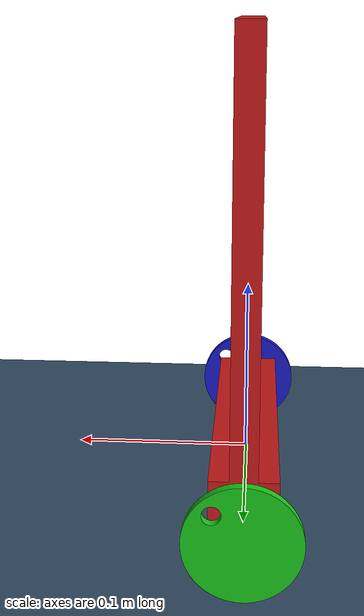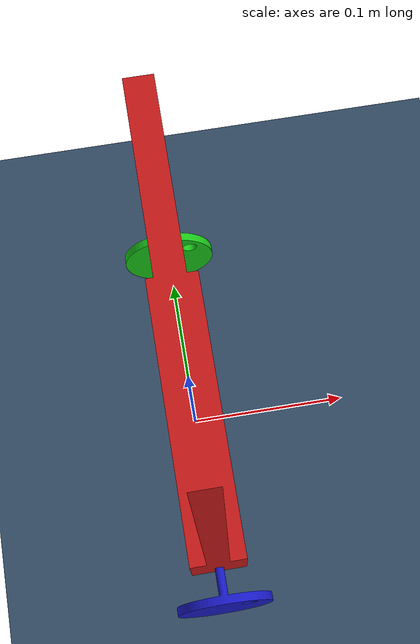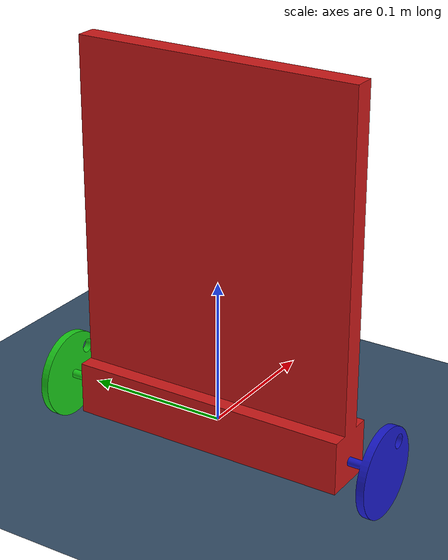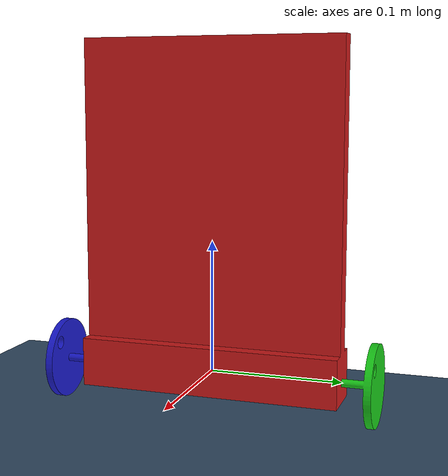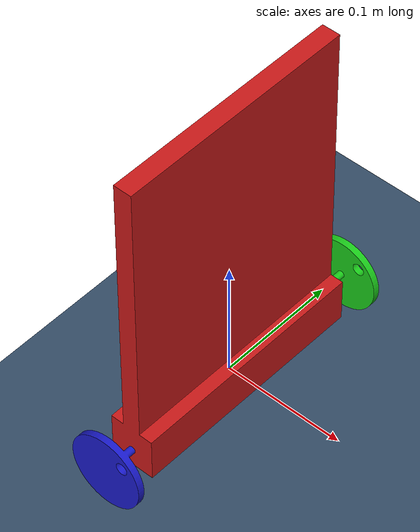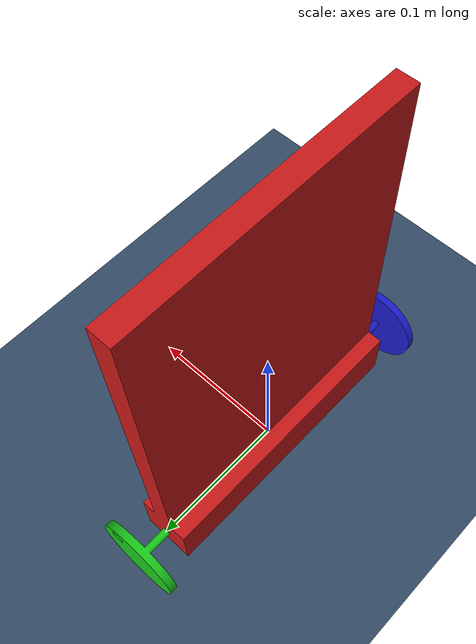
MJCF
<mujoco model="simple_balancing_robot">
    <default>
        <!-- convert the Onshape coordinate system to MuJoCo -->
        <geom type="mesh" xyaxes="1 0 0 0 1 0"/>
    </default>

    <!-- Haze -->
    <visual>
        <headlight diffuse="0.6 0.6 0.6" ambient="0.1 0.1 0.1" specular="0 0 0" />
        <rgba haze="0.15 0.25 0.35 1" />
        <global azimuth="120" elevation="-20" />
    </visual>

    <asset>
        <!-- Onshape outputs meshes with mm units by default, but must be converted to m in MuJoCo, hence the scaling -->
        <mesh name="body" file="body_v1.stl" scale="0.001 0.001 0.001"/>
        <mesh name="wheelL" file="wheel_L_v1.stl" scale="0.001 0.001 0.001"/>
        <mesh name="wheelR" file="wheel_R_v1.stl" scale="0.001 0.001 0.001"/>

        <!-- Sky -->
        <texture type="skybox" builtin="gradient" rgb1="0.1 0.2 0.3" rgb2="0 0 0" width="512"
            height="3072" />
        <!-- Ground -->
        <texture type="2d" name="groundplane" builtin="checker" mark="edge" rgb1="0.3 0.4 0.5"
            rgb2="0.1 0.2 0.3" markrgb="0.8 0.8 0.8" width="300" height="300" />
        <material name="groundplane" texture="groundplane" texuniform="true" texrepeat="8 8"
            reflectance="0.2" />
    </asset>
    <worldbody>
        <light diffuse="0.5 0.5 0.5" pos="0 0 3" dir="0 0 -1"/>
        <geom name="floor" type="plane" size="0 0 0.05" pos="0 0 -0.031" group="1" material="groundplane" />
        <body name="body">
            <inertial pos="0.001 0.0 0.15" mass="0.9" diaginertia="0.001311 0.0012568 0.000487" />     <!-- offset slightly in front to break symmetry -->
            <geom mesh="body" rgba="0.8 0.1 0.1 1" />
            <joint name="joint_robot_body" type="free"/>
            <body name="wheelL">
                <inertial pos="0 0 0" mass="0.032" diaginertia="0.001311 0.0012568 0.000487"/>
                <geom mesh="wheelL" rgba="0.1 0.8 0.1 1"/>
                <joint name="joint_wheel_L" axis="0 1 0" type="hinge" damping="0.1"/>
            </body>
            <body name="wheelR">
                <inertial pos="0 0 0" mass="0.032" diaginertia="0.001311 0.0012568 0.000487"/>
                <geom mesh="wheelR" rgba="0.1 0.1 0.8 1"/>
                <joint name="joint_wheel_R" axis="0 1 0" type="hinge" damping="0.1"/>
            </body>
        </body>
    </worldbody>
    <actuator>
        <motor name="motor_L" joint="joint_wheel_L" />
        <motor name="motor_R" joint="joint_wheel_R" />
    </actuator>

    <option timestep="0.001" />
    <option gravity="0 0 -9.81" />

</mujoco>
